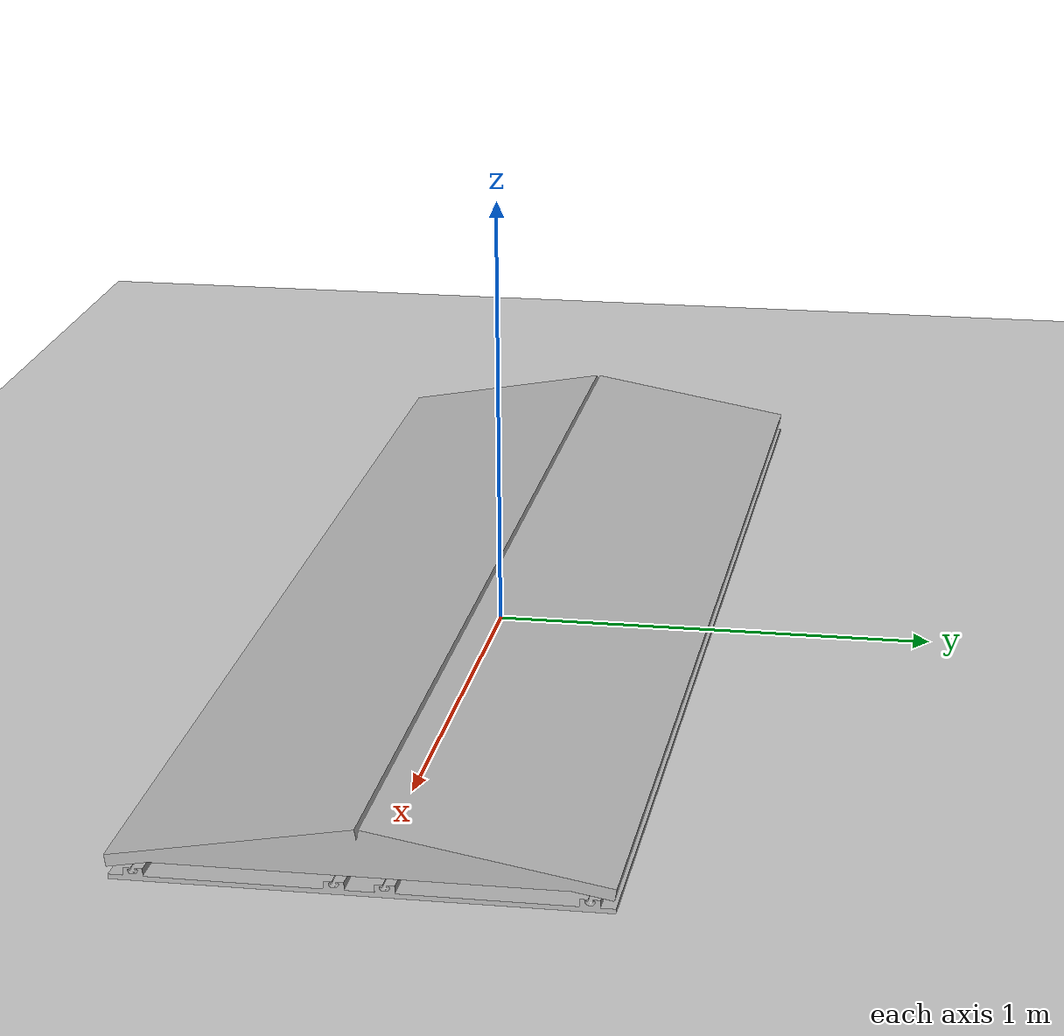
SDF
<?xml version="1.0" ?>
<sdf version="1.4">
  <world name="default">
    <physics type="ode">
      <gravity>0 0 -9.81</gravity>
      <ode>
        <solver>
          <type>quick</type>
          <iters>50</iters>
          <sor>1.4</sor>
        </solver>
        <constraints>
          <cfm>0.0</cfm>
          <erp>0.0</erp>
          <contact_max_correcting_vel>100.0</contact_max_correcting_vel>
          <contact_surface_layer>0.0</contact_surface_layer>
        </constraints>
      </ode>
      <real_time_update_rate>1000</real_time_update_rate>
      <max_step_size>0.001</max_step_size>
    </physics>
    <!-- A global light source -->
    <include>
      <uri>model://sun</uri>
    </include>
    <!-- A ground plane -->
    <include>
      <uri>model://ground_plane</uri>
    </include>

    <include>
      <uri>model://10deg_concave</uri>
          <pose>0.0 0.0 0.0 0.0 0.0 0.0</pose>
    </include>

  </world>
</sdf>

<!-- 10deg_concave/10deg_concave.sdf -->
<sdf version="1.5">
<model name="10deg_concave">
  <!-- Give the base link a unique name -->
  <link name="base">
    <pose>0 0 0 0 0 0</pose>
    <inertial>
      <pose>0 0 0 0 0 0</pose>
      <mass>83.41</mass>
      <inertia>
        <ixx>6.88</ixx>
        <ixy>0</ixy>
        <ixz>0</ixz>
        <iyy>62.92</iyy>
        <iyz>0</iyz>
        <izz>69.56</izz>
      </inertia>
    </inertial>
    <collision name="base_collision">
      <geometry>
        <mesh>
          <uri>model://10deg_concave/meshes/10deg_concave.stl</uri>
          <scale>1 1 1</scale>
        </mesh>
      </geometry>
    </collision>

    <!-- The visual is mostly a copy of the collision -->
    <visual name="base_visual">
      <!-- Offset the visual by have the base's height. We are not rotating
           mesh since symmetrical -->
      <geometry>
        <mesh>
              <uri>model://10deg_concave/meshes/10deg_concave.stl</uri>
        <scale>1 1 1</scale>
        </mesh>
      </geometry>
    </visual>
  </link>

</model>
</sdf>
